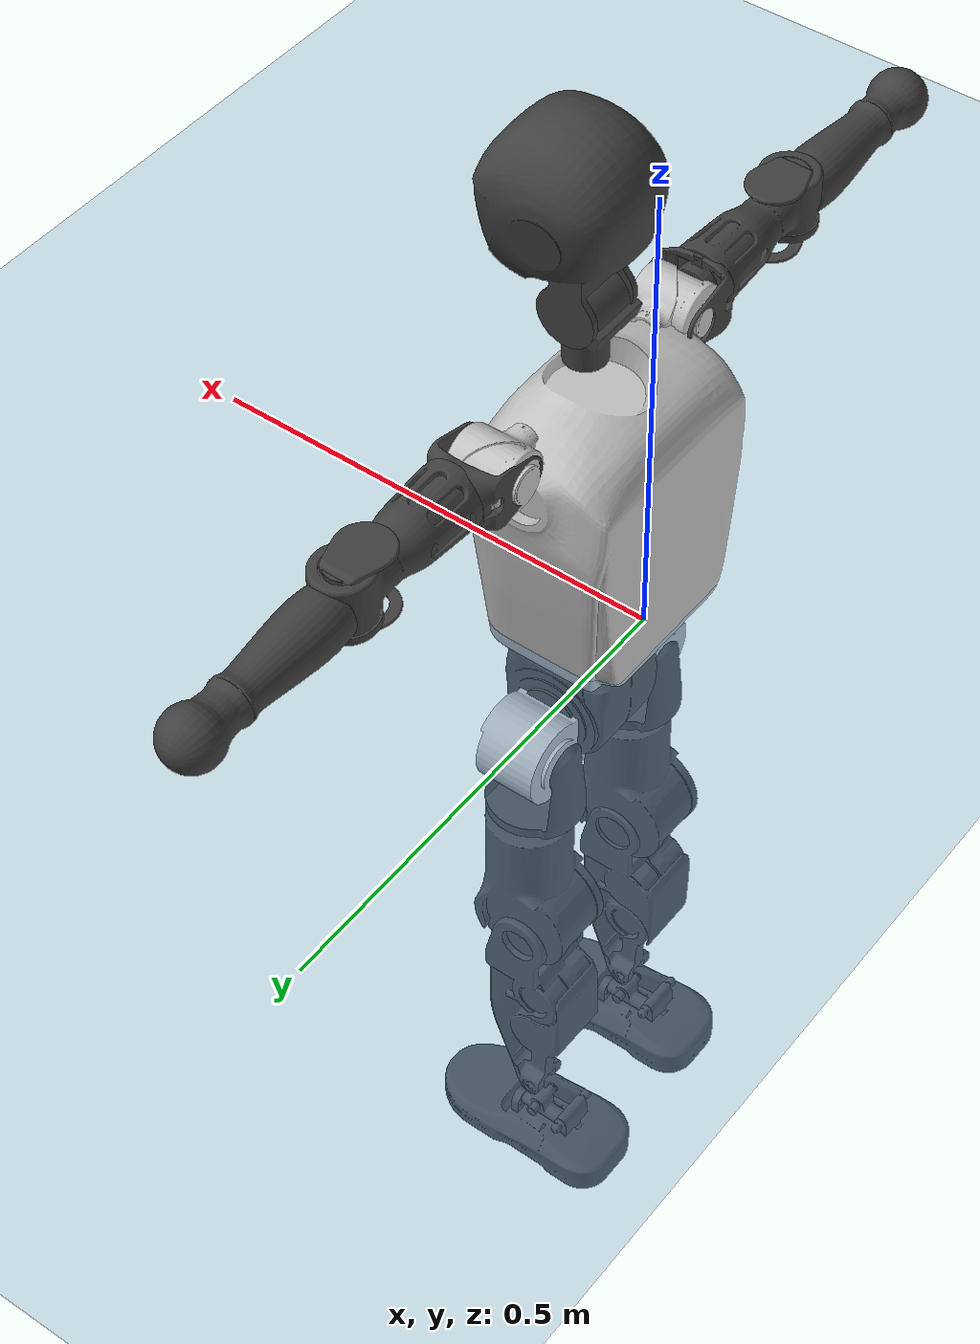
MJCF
<mujoco model="T1">
  <compiler angle="radian" assetdir="assets" balanceinertia="true" inertiafromgeom="false"/>

  <option timestep="0.005" density="1.2" viscosity="2e-05"/>

  <size nkey="1"/>

  <visual>
    <quality shadowsize="8192"/>
    <map shadowclip="0.5"/>
  </visual>

  <default>
    <default class="/">
      <joint armature="0.01" damping="0.01" frictionloss="0.1"/>
      <geom contype="0" conaffinity="0" group="1" solref="-1000 -80"/>
      <site size="0.01 0.005 0.005" group="5"/>
      <general forcelimited="true" biastype="affine" gainprm="25" biasprm="0 -25 -0.6"/>
      <default class="t1">
        <geom rgba="0.25 0.25 0.25 1"/>
        <default class="visual">
          <geom type="mesh" group="2"/>
        </default>
        <default class="collision">
          <geom group="3"/>
        </default>
        <default class="foot">
          <geom size="0.1115 0.05 0.015" type="box" condim="6" group="4" priority="1" solimp="0.015 1 0.015"/>
        </default>
        <default class="reward_collision_sphere">
          <geom group="5" rgba="1 0 0 1"/>
        </default>
      </default>
    </default>
  </default>

  <asset>
    <texture type="skybox" colorspace="auto" name="//unnamed_texture_0" builtin="gradient" rgb1="0.95 0.95 0.95" rgb2="0.95 0.95 0.95" width="100" height="600"/>
    <texture type="2d" colorspace="auto" name="texplane" builtin="checker" rgb1="0.345 0.575 0.748" rgb2="0.345 0.575 0.748" markrgb="1 1 1" width="512" height="512"/>
    <material name="MatPlane" class="/" texture="texplane" texuniform="true" texrepeat="2 2" specular="0.9"/>
    <mesh name="Trunk" class="/" file="Trunk.stl"/>
    <mesh name="H1" class="/" file="H1.stl"/>
    <mesh name="H2" class="/" file="H2.stl"/>
    <mesh name="AL1" class="/" file="AL1.stl"/>
    <mesh name="AL2" class="/" file="AL2.stl"/>
    <mesh name="AL3" class="/" file="AL3.stl"/>
    <mesh name="left_hand_link" class="/" file="left_hand_link.stl"/>
    <mesh name="AR1" class="/" file="AR1.stl"/>
    <mesh name="AR2" class="/" file="AR2.stl"/>
    <mesh name="AR3" class="/" file="AR3.stl"/>
    <mesh name="right_hand_link" class="/" file="right_hand_link.stl"/>
    <mesh name="Waist" class="/" file="Waist.stl"/>
    <mesh name="Hip_Pitch_Left" class="/" file="Hip_Pitch_Left.stl"/>
    <mesh name="Hip_Roll_Left" class="/" file="Hip_Roll_Left.stl"/>
    <mesh name="Hip_Yaw_Left" class="/" file="Hip_Yaw_Left.stl"/>
    <mesh name="Shank_Left" class="/" file="Shank_Left.stl"/>
    <mesh name="Ankle_Cross_Left" class="/" file="Ankle_Cross_Left.stl"/>
    <mesh name="left_foot_link" class="/" file="left_foot_link.stl"/>
    <mesh name="Hip_Pitch_Right" class="/" file="Hip_Pitch_Right.stl"/>
    <mesh name="Hip_Roll_Right" class="/" file="Hip_Roll_Right.stl"/>
    <mesh name="Hip_Yaw_Right" class="/" file="Hip_Yaw_Right.stl"/>
    <mesh name="Shank_Right" class="/" file="Shank_Right.stl"/>
    <mesh name="Ankle_Cross_Right" class="/" file="Ankle_Cross_Right.stl"/>
    <mesh name="right_foot_link" class="/" file="right_foot_link.stl"/>
  </asset>

  <worldbody>
    <geom name="floor" class="/" size="100 100 0.125" type="plane" group="0" material="MatPlane"/>
    <light name="toplight_shadow" class="/" pos="0 0 5" dir="0.0990148 0.0990148 -0.990148" type="directional" ambient="0.04 0.04 0.04" diffuse="0.55 0.55 0.55" specular="0.12 0.12 0.12"/>
    <light name="toplight_fill" class="/" pos="0 0 5" dir="0.0990148 0.0990148 -0.990148" type="directional" castshadow="false" ambient="0.04 0.04 0.04" diffuse="0.3 0.3 0.3" specular="0.08 0.08 0.08"/>
    <body name="trunk" childclass="t1" pos="4.74824e-05 -0.00189247 0.00057143" quat="1 -3.02945e-05 -4.89923e-05 -9.20661e-06">
      <inertial pos="0.0636649 -0.00270737 0.123869" quat="0.999959 0.00014054 -0.00908865 0.00057859" mass="13.4389" diaginertia="0.180126 0.0260186 0.120145"/>
      <joint name="//unnamed_joint_0" type="free" armature="0" damping="0" frictionloss="0"/>
      <geom name="//unnamed_geom_1" class="visual" rgba="0.76 0.76 0.76 1" mesh="Trunk"/>
      <geom name="//unnamed_geom_2" class="collision" size="0.0785197 0.104693 0.157039" pos="0.06961 0 0.140807" type="box"/>
      <geom name="//unnamed_geom_3" class="reward_collision_sphere" size="0.120397" pos="0.06961 0 0.117339"/>
      <geom name="//unnamed_geom_4" class="reward_collision_sphere" size="0.0157039" pos="0.06961 0.0686148 0"/>
      <geom name="//unnamed_geom_5" class="reward_collision_sphere" size="0.0157039" pos="0.06961 -0.0686148 0"/>
      <geom name="//unnamed_geom_6" class="reward_collision_sphere" size="0.0157039" pos="0.06961 0.0863739 0.21121"/>
      <geom name="//unnamed_geom_7" class="reward_collision_sphere" size="0.0157039" pos="0.06961 -0.0863739 0.21121"/>
      <site name="imu" pos="0.00187072 -0.000847388 -0.00243722" size="0.0104693"/>
      <camera name="track" pos="0 -1.61447 0" quat="0.707107 0.707107 0 0" mode="trackcom"/>
      <camera name="ego_camera" pos="0.14154 0 0.492823" quat="-0.5 -0.5 0.5 0.5"/>
      <body name="H1" pos="0.0725906 0.000322897 0.287476" quat="1 0.000200272 7.55099e-05 -0.000461081">
        <inertial pos="-0.000828574 -0.00268547 0.0672799" quat="0.765561 -0.0141826 -0.00131542 0.643205" mass="0.519786" diaginertia="0.000500779 7.94027e-05 0.000336218"/>
        <joint name="AAHead_yaw" pos="0 0 0" axis="0.00952912 0.00651978 0.999933" range="-1.5609 1.57361" armature="0.0092712" damping="0.010046" frictionloss="0.0954745"/>
        <geom name="//unnamed_geom_8" class="visual" mesh="H1"/>
        <body name="H2" pos="-0.0031624 0.00402412 0.0698103" quat="0.999999 0.000315025 0.000784153 -0.00102071">
          <inertial pos="0.00811524 0.00168402 0.118933" quat="0.988817 0.104378 -0.0746752 -0.0759591" mass="0.748519" diaginertia="0.00437904 0.000691021 0.00381576"/>
          <joint name="Head_pitch" pos="0 0 0" axis="0.0102421 -0.99992 -0.00747109" range="-1.20182 0.304402" armature="0.0112118" damping="0.0159359" frictionloss="0.113381"/>
          <geom name="//unnamed_geom_9" class="visual" mesh="H2"/>
          <geom name="//unnamed_geom_10" class="collision" size="0.0837543" pos="0.0116017 0 0.129073"/>
          <geom name="//unnamed_geom_11" class="reward_collision_sphere" size="0.0942236" pos="0.0232033 0 0.117339"/>
        </body>
      </body>
      <body name="AL1" pos="0.0708216 0.088365 0.259194" quat="0.999999 -0.000723777 0.000707248 -0.0011093">
        <inertial pos="-0.00205413 0.0367522 -0.000842424" quat="0.506048 0.495342 -0.503911 0.494596" mass="0.596575" diaginertia="0.00280236 0.000448627 0.000644941"/>
        <joint name="Left_Shoulder_Pitch" pos="0 0 0" axis="-0.000794647 0.999997 0.00249348" range="-3.33687 1.16654" armature="0.010508" damping="0.0188675" frictionloss="0.113959"/>
        <geom name="//unnamed_geom_12" class="visual" rgba="0.76 0.76 0.76 1" mesh="AL1"/>
        <body name="AL2" pos="0.00233439 0.0416203 0.00221447" quat="1 -0.000456483 0.000483204 -6.71626e-05">
          <inertial pos="0.00237699 0.0285725 -0.00200537" quat="0.484604 0.519202 -0.489118 0.506312" mass="0.184" diaginertia="0.000852026 0.000123815 0.000390665"/>
          <joint name="Left_Shoulder_Roll" pos="0 0 0" axis="-0.999935 -0.000253291 -0.0114251" stiffness="0.0170742" range="-1.53467 1.74819" armature="0.00903861" damping="0.00294891" frictionloss="0.106537"/>
          <geom name="//unnamed_geom_13" class="visual" mesh="AL2"/>
          <body name="AL3" pos="0.003354 0.0499382 0.00206343" quat="0.999999 -0.00107851 0.000537864 -0.000141825">
            <inertial pos="-0.00153714 0.071178 0.00203464" quat="0.710511 0.703666 0.00368764 0.00381269" mass="1.20311" diaginertia="0.0268274 0.00437455 0.00138495"/>
            <joint name="Left_Elbow_Pitch" pos="0 0 0" axis="0.0100334 -0.999932 0.00601022" range="-2.21354 2.21944" armature="0.00825764" damping="0" frictionloss="0.106321"/>
            <geom name="//unnamed_geom_14" class="visual" mesh="AL3"/>
            <geom name="//unnamed_geom_15" class="collision" size="0.0314079 0.0785197" pos="0 0.0403616 0" quat="0.707105 0.707108 0 0" type="cylinder"/>
            <geom name="//unnamed_geom_16" class="reward_collision_sphere" size="0.0376895"/>
            <body name="left_hand_link" pos="-0.00210237 0.121554 -0.000441235" quat="0.999999 0.00131528 0.00024063 -0.0001401">
              <inertial pos="0.00284767 0.091002 0.000989342" quat="0.711746 0.702346 -0.00205608 0.0111143" mass="0.378635" diaginertia="0.0174162 0.00286128 0.000467243"/>
              <joint name="Left_Elbow_Yaw" pos="0 0 0" axis="-0.00234489 0.00621697 0.999978" stiffness="0.000605491" range="-2.4459 0.064579" armature="0.00947541" damping="0.0221444" frictionloss="0.100975"/>
              <geom name="//unnamed_geom_17" class="visual" mesh="left_hand_link"/>
              <geom name="//unnamed_geom_18" class="collision" size="0.0314079 0.0916063" pos="0 0.10494 0" quat="0.707105 0.707108 0 0" type="cylinder"/>
              <geom name="//unnamed_geom_19" class="reward_collision_sphere" size="0.0523465"/>
              <geom name="//unnamed_geom_20" class="reward_collision_sphere" size="0.0366425" pos="0 0.0887956 0"/>
              <geom name="//unnamed_geom_21" class="reward_collision_sphere" size="0.0366425" pos="0 0.173555 0"/>
            </body>
          </body>
        </body>
      </body>
      <body name="AR1" pos="0.0686814 -0.0831701 0.259782" quat="0.999999 0.00130499 0.0007456 0.000200322">
        <inertial pos="-0.00176259 -0.0324441 -0.00233099" quat="0.508376 0.492919 -0.501059 0.497518" mass="0.635943" diaginertia="0.00283452 0.00044709 0.000679047"/>
        <joint name="Right_Shoulder_Pitch" pos="0 0 0" axis="0.00341299 -0.99999 0.00285523" stiffness="0.0170718" range="-1.23832 3.27329" armature="0.00984465" damping="0" frictionloss="0.0938224"/>
        <geom name="//unnamed_geom_22" class="visual" rgba="0.76 0.76 0.76 1" mesh="AR1"/>
        <body name="AR2" pos="-0.00327557 -0.0361733 -0.00123875" quat="1 0.000512702 -0.000324454 0.000606507">
          <inertial pos="0.00356211 -0.0303616 -0.0018947" quat="0.509012 0.48029 -0.518643 0.491159" mass="0.187482" diaginertia="0.000839606 0.000115385 0.000379693"/>
          <joint name="Right_Shoulder_Roll" pos="0 0 0" axis="-0.999949 0.0100802 -0.000491562" range="-1.68602 1.62593" armature="0.0100148" damping="0.0168041" frictionloss="0.0842214"/>
          <geom name="//unnamed_geom_23" class="visual" mesh="AR2"/>
          <body name="AR3" pos="0.00105784 -0.0462705 0.0039475" quat="1 -3.57411e-05 8.82894e-05 0.000186233">
            <inertial pos="1.38275e-05 -0.0670291 -0.00208594" quat="0.704132 0.710061 0.00165043 0.00297848" mass="1.16144" diaginertia="0.0267769 0.00420687 0.00134602"/>
            <joint name="Right_Elbow_Pitch" pos="0 0 0" axis="0.00587585 0.999974 -0.00422191" stiffness="0.00358227" range="-2.24092 2.24142" armature="0.0115248" damping="0.0146341" frictionloss="0.10947"/>
            <geom name="//unnamed_geom_24" class="visual" mesh="AR3"/>
            <geom name="//unnamed_geom_25" class="collision" size="0.0314079 0.0785197" pos="0 -0.0403616 0" quat="0.707105 0.707108 0 0" type="cylinder"/>
            <geom name="//unnamed_geom_26" class="reward_collision_sphere" size="0.0376895"/>
            <body name="right_hand_link" pos="-0.00131165 -0.119234 -0.00137251" quat="1 -0.000112667 0.000235158 -8.09938e-05">
              <inertial pos="0.000533734 -0.0906644 -0.00126579" quat="0.706261 0.707952 0.000317802 1.98643e-06" mass="0.35661" diaginertia="0.0164845 0.00273783 0.000464921"/>
              <joint name="Right_Elbow_Yaw" pos="0 0 0" axis="0.000450248 -0.00257061 0.999997" stiffness="0.00428315" range="-0.00675152 2.45928" armature="0.00968078" damping="0.0228937" frictionloss="0.105786"/>
              <geom name="//unnamed_geom_27" class="visual" mesh="right_hand_link"/>
              <geom name="//unnamed_geom_28" class="collision" size="0.0314079 0.0916063" pos="0 -0.10494 0" quat="0.707105 0.707108 0 0" type="cylinder"/>
              <geom name="//unnamed_geom_29" class="reward_collision_sphere" size="0.0523465"/>
              <geom name="//unnamed_geom_30" class="reward_collision_sphere" size="0.0366425" pos="0 -0.0887956 0"/>
              <geom name="//unnamed_geom_31" class="reward_collision_sphere" size="0.0366425" pos="0 -0.173555 0"/>
            </body>
          </body>
        </body>
      </body>
      <body name="Waist" pos="0.0725725 -0.000282009 -0.1385" quat="1 0.000522171 -0.000621609 -0.000198514">
        <inertial pos="0.00452313 -0.00291708 0.0108978" quat="0.983586 -0.00549539 -0.180354 -0.0012358" mass="3.09772" diaginertia="0.0120779 0.00188306 0.0111537"/>
        <joint name="Waist" pos="0 0 0" axis="-0.00428678 0.00694936 0.999967" range="-1.52747 1.60288" armature="0.0101743" damping="0.0141272" frictionloss="0.0983158"/>
        <geom name="//unnamed_geom_32" class="visual" mesh="Waist"/>
        <body name="Hip_Pitch_Left" pos="0.00110317 0.0826968 -0.00200076" quat="1 5.39091e-06 -0.000735051 -0.00048797">
          <inertial pos="0.000560024 -0.0081438 -0.021951" quat="0.973522 0.228017 0.0114898 0.0114392" mass="1.21261" diaginertia="0.00382119 0.000491007 0.00288995"/>
          <joint name="Left_Hip_Pitch" pos="0 0 0" axis="-0.0198983 0.999801 0.00136739" stiffness="0.0109699" range="-1.81685 1.51461" armature="0.0113127" damping="0.0153455" frictionloss="0.106874"/>
          <geom name="//unnamed_geom_33" class="visual" rgba="0.76 0.76 0.76 1" mesh="Hip_Pitch_Left"/>
          <body name="Hip_Roll_Left" pos="-0.00208563 -0.00445713 -0.0247191" quat="0.999998 0.00137364 -0.000592774 -0.00107975">
            <inertial pos="0.00179949 -0.000914951 -0.0609791" quat="0.711357 -0.0053594 -0.0175886 0.702591" mass="0.445767" diaginertia="0.00372402 0.000541635 0.00118714"/>
            <joint name="Left_Hip_Roll" pos="0 0 0" axis="-0.999893 -0.0146139 -0.000459545" range="-1.52181 0.215266" armature="0.00945412" damping="0.00173708" frictionloss="0.0926705"/>
            <geom name="//unnamed_geom_34" class="visual" mesh="Hip_Roll_Left"/>
            <geom name="//unnamed_geom_35" class="reward_collision_sphere" size="0.0575811"/>
            <body name="Hip_Yaw_Left" pos="0.00319379 0.00149519 -0.0991097" quat="1 0.000223992 -0.000285947 -2.54383e-05">
              <inertial pos="-0.0079846 0.00252985 -0.10436" quat="0.690805 -0.0441419 -0.030548 0.721046" mass="2.47099" diaginertia="0.054999 0.00866316 0.00590744"/>
              <joint name="Left_Hip_Yaw" pos="0 0 0" axis="-0.0030686 -0.000606031 -0.999995" range="-1.01193 0.984752" armature="0.0104934" damping="0.0189499" frictionloss="0.109701"/>
              <geom name="//unnamed_geom_36" class="visual" mesh="Hip_Yaw_Left"/>
              <geom name="//unnamed_geom_37" class="collision" size="0.0523465 0.0837543" type="cylinder"/>
              <body name="Shank_Left" pos="-0.0180252 0.00150018 -0.15745" quat="1 -0.000235008 -0.000406927 -0.000177343">
                <inertial pos="-0.00903166 0.000642529 -0.146916" quat="0.997602 0.00490026 -0.0228591 0.0651486" mass="2.0571" diaginertia="0.0742945 0.0121188 0.00430821"/>
                <joint name="Left_Knee_Pitch" pos="0 0 0" axis="0.00220636 0.999997 -0.000792541" stiffness="0.00720119" range="0.0477409 2.30109" armature="0.00963334" damping="0.000991279" frictionloss="0.091343"/>
                <geom name="//unnamed_geom_38" class="visual" mesh="Shank_Left"/>
                <geom name="//unnamed_geom_39" class="collision" size="0.0523465 0.0785197" pos="0 0 -0.140807" type="cylinder"/>
                <geom name="//unnamed_geom_40" class="reward_collision_sphere" size="0.0680504"/>
                <body name="Ankle_Cross_Left" pos="-0.00256927 8.98175e-06 -0.328275" quat="1 0.000695437 -0.000356215 0.000375129">
                  <inertial pos="-0.00633163 0.00345888 -0.0109216" quat="0.443155 0.55102 0.55102 0.443135" mass="0.0844286" diaginertia="6.17337e-05 8.69496e-06 2.54471e-05"/>
                  <joint name="Left_Ankle_Pitch" pos="0 0 0" axis="-0.00252515 0.999996 0.00150997" range="-0.83723 0.400871" armature="0.00903579" damping="0.00727182" frictionloss="0.109435"/>
                  <geom name="//unnamed_geom_41" class="visual" mesh="Ankle_Cross_Left"/>
                  <body name="left_foot_link" pos="0.000317709 0.0027472 -0.0162359" quat="1 0.000315498 -0.00013542 0.000405736">
                    <inertial pos="-0.00182613 -0.00019491 -0.0143288" quat="0.00767446 0.614242 -0.00620241 0.789056" mass="0.77011" diaginertia="0.00532463 0.000812632 0.00456371"/>
                    <joint name="Left_Ankle_Roll" pos="0 0 0" axis="-0.999999 0.00112512 -0.000311761" range="-0.426855 0.44852" armature="0.0113695" damping="0" frictionloss="0.108965"/>
                    <geom name="//unnamed_geom_42" class="visual" mesh="left_foot_link"/>
                    <geom name="left_foot" class="foot" size="0.0701445 0.0525358 0.0181586" pos="0.0116017 0 -0.0176008"/>
                    <geom name="//unnamed_geom_44" class="reward_collision_sphere" size="0.0544403" pos="0.0116017 0 -0.0176008"/>
                    <geom name="//unnamed_geom_45" class="reward_collision_sphere" size="0.0314079" pos="0.110216 -0.0185664 -0.0176008"/>
                    <geom name="//unnamed_geom_46" class="reward_collision_sphere" size="0.0314079" pos="-0.0812117 -0.0185664 -0.0176008"/>
                    <site name="left_foot" class="foot" pos="0.0116017 0 -0.0176008" size="0.0104693"/>
                  </body>
                </body>
              </body>
            </body>
          </body>
        </body>
        <body name="Hip_Pitch_Right" pos="0.000327629 -0.0878933 -0.000569057" quat="0.999998 0.00145624 0.000934251 -0.000170558">
          <inertial pos="-0.00162161 0.0104082 -0.021464" quat="0.974174 -0.224946 0.019575 -0.00139521" mass="1.22249" diaginertia="0.00389705 0.000517593 0.002766"/>
          <joint name="Right_Hip_Pitch" pos="0 0 0" axis="-0.000966095 -0.999972 0.00742483" range="-1.57649 1.78625" armature="0.00939429" damping="0.00289327" frictionloss="0.0894887"/>
          <geom name="//unnamed_geom_47" class="visual" rgba="0.76 0.76 0.76 1" mesh="Hip_Pitch_Right"/>
          <body name="Hip_Roll_Right" pos="0.00266925 -0.00346475 -0.0260491" quat="1 -0.00021288 -0.00010603 -7.54027e-05">
            <inertial pos="0.00331083 -0.00350375 -0.0599982" quat="0.709572 -0.0078114 0.00444249 0.704576" mass="0.443368" diaginertia="0.00364242 0.000524639 0.00115438"/>
            <joint name="Right_Hip_Roll" pos="0 0 0" axis="-0.999962 0.00605653 -0.00623549" stiffness="0.00349796" range="-0.221592 1.5802" armature="0.011648" damping="0.0105537" frictionloss="0.112593"/>
            <geom name="//unnamed_geom_48" class="visual" mesh="Hip_Roll_Right"/>
            <geom name="//unnamed_geom_49" class="reward_collision_sphere" size="0.0575811"/>
            <body name="Hip_Yaw_Right" pos="0.00274057 -0.00162789 -0.0997338" quat="1 -6.93095e-06 0.000200565 0.00036581">
              <inertial pos="-0.00718113 -0.000780041 -0.102101" quat="0.714158 -0.0320348 -0.0351848 0.698365" mass="2.58752" diaginertia="0.0536423 0.0088193 0.00566821"/>
              <joint name="Right_Hip_Yaw" pos="0 0 0" axis="0.00905781 0.00448511 -0.999949" range="-1.06647 1.0181" armature="0.0124303" damping="0.00833592" frictionloss="0.0926453"/>
              <geom name="//unnamed_geom_50" class="visual" mesh="Hip_Yaw_Right"/>
              <geom name="//unnamed_geom_51" class="collision" size="0.0523465 0.0837543" type="cylinder"/>
              <body name="Shank_Right" pos="-0.0121288 -0.00319214 -0.156658" quat="1 8.57926e-05 -0.000605331 0.000603462">
                <inertial pos="-0.0081211 -7.25778e-06 -0.1469" quat="0.999227 0.000288602 -0.0234471 -0.0315649" mass="2.06657" diaginertia="0.072785 0.0118927 0.00415744"/>
                <joint name="Right_Knee_Pitch" pos="0 0 0" axis="-0.00277925 -0.99999 0.00348801" range="-2.35845 0.0103148" armature="0.00951947" damping="0.00915941" frictionloss="0.091565"/>
                <geom name="//unnamed_geom_52" class="visual" mesh="Shank_Right"/>
                <geom name="//unnamed_geom_53" class="collision" size="0.0523465 0.0785197" pos="0 0 -0.140807" type="cylinder"/>
                <geom name="//unnamed_geom_54" class="reward_collision_sphere" size="0.0680504"/>
                <body name="Ankle_Cross_Right" pos="0.0023548 0.000626325 -0.325315" quat="0.999998 3.93629e-05 0.00164229 0.0012935">
                  <inertial pos="-0.00687648 -0.00198702 -0.00962293" quat="0.441718 0.557811 0.54639 0.441803" mass="0.0840513" diaginertia="6.30527e-05 8.82504e-06 2.55431e-05"/>
                  <joint name="Right_Ankle_Pitch" pos="0 0 0" axis="0.0114869 -0.999866 0.0116768" range="-0.331124 0.879469" armature="0.0108248" damping="0.0045796" frictionloss="0.095271"/>
                  <geom name="//unnamed_geom_55" class="visual" mesh="Ankle_Cross_Right"/>
                  <body name="right_foot_link" pos="-0.000511914 0.00123508 -0.0158703" quat="0.999999 0.000517721 0.000683924 -0.000543133">
                    <inertial pos="-0.000856829 0.00282143 -0.00992483" quat="0.00563422 0.619481 0.0114363 0.784908" mass="0.762318" diaginertia="0.00574667 0.000819623 0.00483935"/>
                    <joint name="Right_Ankle_Roll" pos="0 0 0" axis="-1 0.000629419 -8.45689e-05" range="-0.523677 0.44835" armature="0.00993809" damping="0.00311651" frictionloss="0.102523"/>
                    <geom name="//unnamed_geom_56" class="visual" mesh="right_foot_link"/>
                    <geom name="right_foot" class="foot" size="0.0727583 0.0504128 0.0170128" pos="0.0116017 0 -0.0176008"/>
                    <geom name="//unnamed_geom_58" class="reward_collision_sphere" size="0.0418772"/>
                    <geom name="//unnamed_geom_59" class="reward_collision_sphere" size="0.0314079" pos="0.0116017 0 -0.0176008"/>
                    <geom name="//unnamed_geom_60" class="reward_collision_sphere" size="0.0314079" pos="0.110216 0.0185664 -0.0176008"/>
                    <geom name="//unnamed_geom_61" class="reward_collision_sphere" size="0.0314079" pos="-0.0812117 0.0185664 -0.0176008"/>
                    <site name="right_foot" class="foot" pos="0.0116017 0 -0.0176008" size="0.0104693"/>
                  </body>
                </body>
              </body>
            </body>
          </body>
        </body>
      </body>
    </body>
  </worldbody>

  <contact>
    <pair class="/" geom1="floor" geom2="left_foot" name="//unnamed_contact_0"/>
    <pair class="/" geom1="floor" geom2="right_foot" name="//unnamed_contact_1"/>
  </contact>

  <actuator>
    <general name="AAHead_yaw" class="/" joint="AAHead_yaw" forcerange="-6.96951 6.96951" gainprm="24.8121" biasprm="0 -24.8121 -0.561178"/>
    <general name="Head_pitch" class="/" joint="Head_pitch" forcerange="-7.49136 7.49136" gainprm="24.8121" biasprm="0 -24.8121 -0.561178"/>
    <general name="Left_Shoulder_Pitch" class="/" joint="Left_Shoulder_Pitch" forcerange="-16.9869 16.9869" gainprm="24.8121" biasprm="0 -24.8121 -0.561178"/>
    <general name="Left_Shoulder_Roll" class="/" joint="Left_Shoulder_Roll" forcerange="-17.8814 17.8814" gainprm="24.8121" biasprm="0 -24.8121 -0.561178"/>
    <general name="Left_Elbow_Pitch" class="/" joint="Left_Elbow_Pitch" forcerange="-18.3873 18.3873" gainprm="24.8121" biasprm="0 -24.8121 -0.561178"/>
    <general name="Left_Elbow_Yaw" class="/" joint="Left_Elbow_Yaw" forcerange="-18.406 18.406" gainprm="24.8121" biasprm="0 -24.8121 -0.561178"/>
    <general name="Right_Shoulder_Pitch" class="/" joint="Right_Shoulder_Pitch" forcerange="-18.9779 18.9779" gainprm="24.8121" biasprm="0 -24.8121 -0.561178"/>
    <general name="Right_Shoulder_Roll" class="/" joint="Right_Shoulder_Roll" forcerange="-17.0043 17.0043" gainprm="24.8121" biasprm="0 -24.8121 -0.561178"/>
    <general name="Right_Elbow_Pitch" class="/" joint="Right_Elbow_Pitch" forcerange="-20.8943 20.8943" gainprm="24.8121" biasprm="0 -24.8121 -0.561178"/>
    <general name="Right_Elbow_Yaw" class="/" joint="Right_Elbow_Yaw" forcerange="-16.8513 16.8513" gainprm="24.8121" biasprm="0 -24.8121 -0.561178"/>
    <general name="Waist" class="/" joint="Waist" forcerange="-33.1847 33.1847" gainprm="24.8121" biasprm="0 -24.8121 -0.561178"/>
    <general name="Left_Hip_Pitch" class="/" joint="Left_Hip_Pitch" forcerange="-42.5891 42.5891" gainprm="24.8121" biasprm="0 -24.8121 -0.561178"/>
    <general name="Left_Hip_Roll" class="/" joint="Left_Hip_Roll" forcerange="-32.0374 32.0374" gainprm="24.8121" biasprm="0 -24.8121 -0.561178"/>
    <general name="Left_Hip_Yaw" class="/" joint="Left_Hip_Yaw" forcerange="-28.6935 28.6935" gainprm="24.8121" biasprm="0 -24.8121 -0.561178"/>
    <general name="Left_Knee_Pitch" class="/" joint="Left_Knee_Pitch" forcerange="-64.2986 64.2986" gainprm="24.8121" biasprm="0 -24.8121 -0.561178"/>
    <general name="Left_Ankle_Pitch" class="/" joint="Left_Ankle_Pitch" forcerange="-18.269 18.269" gainprm="24.8121" biasprm="0 -24.8121 -0.561178"/>
    <general name="Left_Ankle_Roll" class="/" joint="Left_Ankle_Roll" forcerange="-18.1372 18.1372" gainprm="24.8121" biasprm="0 -24.8121 -0.561178"/>
    <general name="Right_Hip_Pitch" class="/" joint="Right_Hip_Pitch" forcerange="-46.8898 46.8898" gainprm="24.8121" biasprm="0 -24.8121 -0.561178"/>
    <general name="Right_Hip_Roll" class="/" joint="Right_Hip_Roll" forcerange="-32.2376 32.2376" gainprm="24.8121" biasprm="0 -24.8121 -0.561178"/>
    <general name="Right_Hip_Yaw" class="/" joint="Right_Hip_Yaw" forcerange="-28.7247 28.7247" gainprm="24.8121" biasprm="0 -24.8121 -0.561178"/>
    <general name="Right_Knee_Pitch" class="/" joint="Right_Knee_Pitch" forcerange="-68.3155 68.3155" gainprm="24.8121" biasprm="0 -24.8121 -0.561178"/>
    <general name="Right_Ankle_Pitch" class="/" joint="Right_Ankle_Pitch" forcerange="-21.2932 21.2932" gainprm="24.8121" biasprm="0 -24.8121 -0.561178"/>
    <general name="Right_Ankle_Roll" class="/" joint="Right_Ankle_Roll" forcerange="-16.2121 16.2121" gainprm="24.8121" biasprm="0 -24.8121 -0.561178"/>
  </actuator>

  <sensor>
    <gyro site="imu" name="imu_angular_velocity"/>
    <velocimeter site="imu" name="imu_linear_velocity"/>
    <framelinvel objtype="site" objname="left_foot" name="left_foot_global_linear_velocity"/>
    <framelinvel objtype="site" objname="right_foot" name="right_foot_global_linear_velocity"/>
  </sensor>

  <keyframe>
    <key name="home" qpos="0 0 0.6385 1 0 0 0 0 0 0 1.4 0 -0.4 0 -1.4 0 0.4 0 -0.4 0 0 0.8 -0.4 0 0.4 0 0 -0.8 0.4 0"/>
  </keyframe>
</mujoco>
